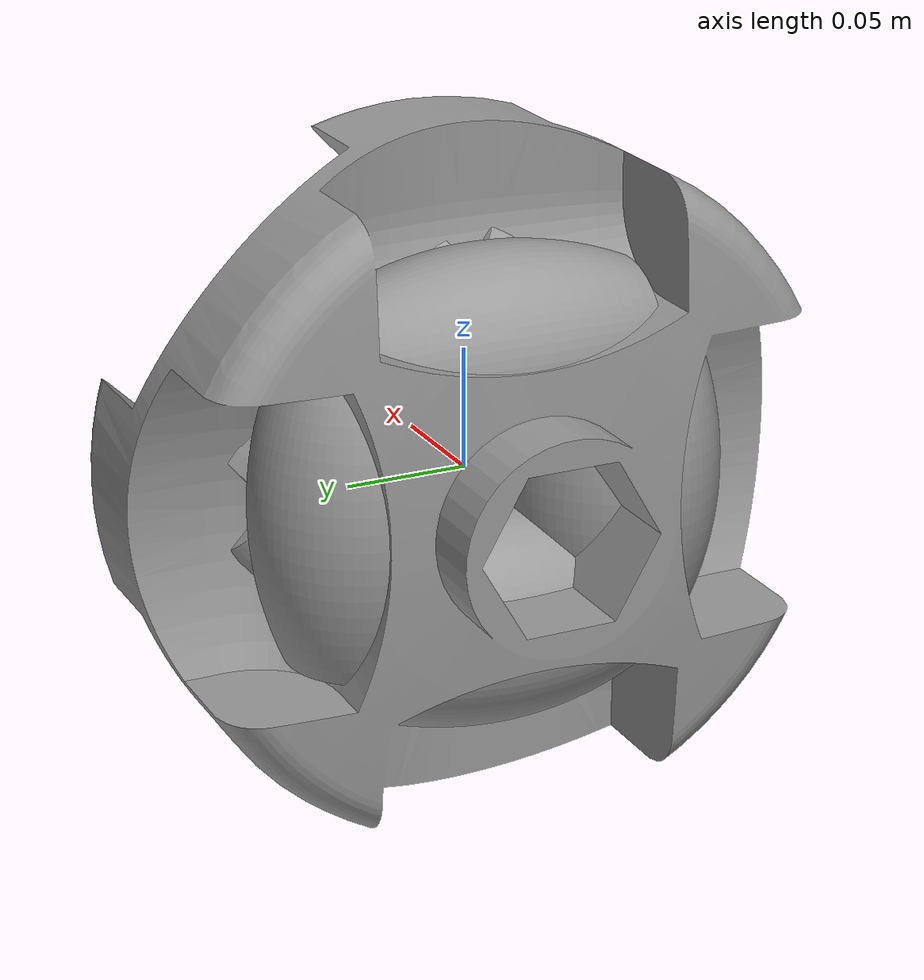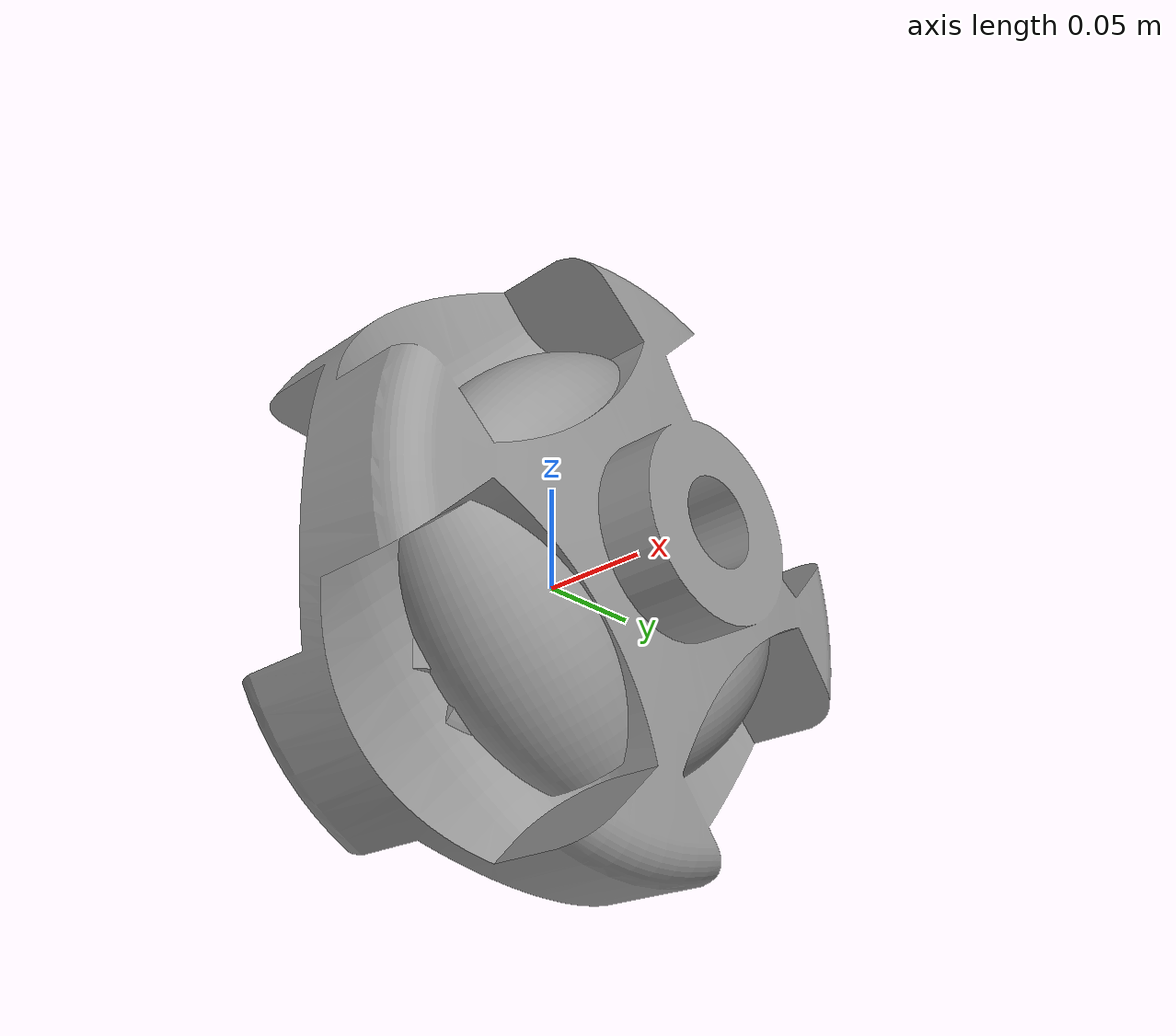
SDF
<?xml version='1.0'?>
<sdf version='1.6'>
  <model name='omni_wheel_model_scaled'>
    <link name='omni_wheel_rim_link'>
      <pose frame=''>0 0 0 0 -0 0</pose>
      <inertial>
        <mass>0.5349024</mass>
        <inertia>
          <ixx>9.40333e-07</ixx>
          <ixy>0</ixy>
          <ixz>0</ixz>
          <iyy>6.63684e-07</iyy>
          <iyz>0</iyz>
          <izz>6.63684e-07</izz>
        </inertia>
        <pose frame=''>0 -0.000343 0 0 -0 0</pose>
      </inertial>
      <self_collide>0</self_collide>
      <kinematic>0</kinematic>
      <gravity>1</gravity>
      <visual name='visual'>
        <pose frame=''>0 0 0 0 -0 0</pose>
        <geometry>
          <mesh>
            <uri>model://omni_wheel/rim.stl</uri>
            <scale>4 4 4</scale>
          </mesh>
        </geometry>
        <material>
          <lighting>1</lighting>
          <script>
            <uri>file://media/materials/scripts/gazebo.material</uri>
            <name>Gazebo/Grey</name>
          </script>
          <ambient>0.3 0.3 0.3 1</ambient>
          <diffuse>0.7 0.7 0.7 1</diffuse>
          <specular>0.01 0.01 0.01 1</specular>
          <emissive>0 0 0 1</emissive>
          <shader type='vertex'>
            <normal_map>__default__</normal_map>
          </shader>
        </material>
        <transparency>0</transparency>
        <cast_shadows>1</cast_shadows>
      </visual>
      <collision name='collision'>
        <laser_retro>0</laser_retro>
        <max_contacts>10</max_contacts>
        <pose frame=''>0 0 0 0 -0 0</pose>
        <geometry>
          <mesh>
            <uri>model://omni_wheel/rim.stl</uri>
            <scale>4 4 4</scale>
          </mesh>
        </geometry>
        <surface>
          <friction>
            <ode>
              <mu>1</mu>
              <mu2>1</mu2>
              <fdir1>0 0 0</fdir1>
              <slip1>0</slip1>
              <slip2>0</slip2>
            </ode>
            <torsional>
              <coefficient>1</coefficient>
              <patch_radius>0</patch_radius>
              <surface_radius>0</surface_radius>
              <use_patch_radius>1</use_patch_radius>
              <ode>
                <slip>0</slip>
              </ode>
            </torsional>
          </friction>
          <bounce>
            <restitution_coefficient>0</restitution_coefficient>
            <threshold>1e+06</threshold>
          </bounce>
          <contact>
            <collide_without_contact>0</collide_without_contact>
            <collide_without_contact_bitmask>1</collide_without_contact_bitmask>
            <collide_bitmask>1</collide_bitmask>
            <ode>
              <soft_cfm>0</soft_cfm>
              <soft_erp>0.2</soft_erp>
              <kp>1e+13</kp>
              <kd>1</kd>
              <max_vel>0.01</max_vel>
              <min_depth>0</min_depth>
            </ode>
            <bullet>
              <split_impulse>1</split_impulse>
              <split_impulse_penetration_threshold>-0.01</split_impulse_penetration_threshold>
              <soft_cfm>0</soft_cfm>
              <soft_erp>0.2</soft_erp>
              <kp>1e+13</kp>
              <kd>1</kd>
            </bullet>
          </contact>
        </surface>
      </collision>
    </link>
    <link name='omni_wheel_roller_e_link'>
      <pose frame=''>-0.022 0.0542 0 0 -0 0</pose>
      <inertial>
        <mass>0.00113845</mass>
        <inertia>
          <ixx>2.53776e-08</ixx>
          <ixy>0</ixy>
          <ixz>0</ixz>
          <iyy>2.53776e-08</iyy>
          <iyz>0</iyz>
          <izz>1.47666e-08</izz>
        </inertia>
        <pose frame=''>0 0 0 0 -0 0</pose>
      </inertial>
      <self_collide>0</self_collide>
      <kinematic>0</kinematic>
      <visual name='visual'>
        <pose frame=''>0 0 0 0 -0 0</pose>
        <geometry>
          <mesh>
            <uri>model://omni_wheel/roller.stl</uri>
            <scale>4 4 4</scale>
          </mesh>
        </geometry>
        <material>
          <lighting>1</lighting>
          <script>
            <uri>file://media/materials/scripts/gazebo.material</uri>
            <name>Gazebo/Grey</name>
          </script>
          <ambient>0.03 0.03 0.03 1</ambient>
          <diffuse>0.07 0.07 0.07 1</diffuse>
          <specular>0.001 0.001 0.001 1</specular>
          <emissive>0 0 0 1</emissive>
          <shader type='vertex'>
            <normal_map>__default__</normal_map>
          </shader>
        </material>
        <transparency>0</transparency>
        <cast_shadows>1</cast_shadows>
      </visual>
      <collision name='collision'>
        <laser_retro>0</laser_retro>
        <max_contacts>10</max_contacts>
        <pose frame=''>0 0 0 0 -0 0</pose>
        <geometry>
          <mesh>
            <uri>model://omni_wheel/roller.stl</uri>
            <scale>4 4 4</scale>
          </mesh>
        </geometry>
        <surface>
          <friction>
            <ode>
              <mu>1</mu>
              <mu2>1</mu2>
              <fdir1>0 0 0</fdir1>
              <slip1>0</slip1>
              <slip2>0</slip2>
            </ode>
            <torsional>
              <coefficient>1</coefficient>
              <patch_radius>0</patch_radius>
              <surface_radius>0</surface_radius>
              <use_patch_radius>1</use_patch_radius>
              <ode>
                <slip>0</slip>
              </ode>
            </torsional>
          </friction>
          <bounce>
            <restitution_coefficient>0</restitution_coefficient>
            <threshold>1e+06</threshold>
          </bounce>
          <contact>
            <collide_without_contact>0</collide_without_contact>
            <collide_without_contact_bitmask>1</collide_without_contact_bitmask>
            <collide_bitmask>1</collide_bitmask>
            <ode>
              <soft_cfm>0</soft_cfm>
              <soft_erp>0.2</soft_erp>
              <kp>1e+13</kp>
              <kd>1</kd>
              <max_vel>0.01</max_vel>
              <min_depth>0</min_depth>
            </ode>
            <bullet>
              <split_impulse>1</split_impulse>
              <split_impulse_penetration_threshold>-0.01</split_impulse_penetration_threshold>
              <soft_cfm>0</soft_cfm>
              <soft_erp>0.2</soft_erp>
              <kp>1e+13</kp>
              <kd>1</kd>
            </bullet>
          </contact>
        </surface>
      </collision>
    </link>
    <link name='omni_wheel_roller_ne_link'>
      <pose frame=''>0.022 0.038324 0.038324 0.875398 -0 0</pose>
      <inertial>
        <mass>0.00113845</mass>
        <inertia>
          <ixx>2.53776e-08</ixx>
          <ixy>0</ixy>
          <ixz>0</ixz>
          <iyy>2.53776e-08</iyy>
          <iyz>0</iyz>
          <izz>1.47666e-08</izz>
        </inertia>
        <pose frame=''>0 0 0 0 -0 0</pose>
      </inertial>
      <self_collide>0</self_collide>
      <kinematic>0</kinematic>
      <visual name='visual'>
        <pose frame=''>0 0 0 0 -0 0</pose>
        <geometry>
          <mesh>
            <uri>model://omni_wheel/roller.stl</uri>
            <scale>4 4 4</scale>
          </mesh>
        </geometry>
        <material>
          <lighting>1</lighting>
          <script>
            <uri>file://media/materials/scripts/gazebo.material</uri>
            <name>Gazebo/Grey</name>
          </script>
          <ambient>0.03 0.03 0.03 1</ambient>
          <diffuse>0.07 0.07 0.07 1</diffuse>
          <specular>0.001 0.001 0.001 1</specular>
          <emissive>0 0 0 1</emissive>
          <shader type='vertex'>
            <normal_map>__default__</normal_map>
          </shader>
        </material>
        <transparency>0</transparency>
        <cast_shadows>1</cast_shadows>
      </visual>
      <collision name='collision'>
        <laser_retro>0</laser_retro>
        <max_contacts>10</max_contacts>
        <pose frame=''>0 0 0 0 -0 0</pose>
        <geometry>
          <mesh>
            <uri>model://omni_wheel/roller.stl</uri>
            <scale>4 4 4</scale>
          </mesh>
        </geometry>
        <surface>
          <friction>
            <ode>
              <mu>1</mu>
              <mu2>1</mu2>
              <fdir1>0 0 0</fdir1>
              <slip1>0</slip1>
              <slip2>0</slip2>
            </ode>
            <torsional>
              <coefficient>1</coefficient>
              <patch_radius>0</patch_radius>
              <surface_radius>0</surface_radius>
              <use_patch_radius>1</use_patch_radius>
              <ode>
                <slip>0</slip>
              </ode>
            </torsional>
          </friction>
          <bounce>
            <restitution_coefficient>0</restitution_coefficient>
            <threshold>1e+06</threshold>
          </bounce>
          <contact>
            <collide_without_contact>0</collide_without_contact>
            <collide_without_contact_bitmask>1</collide_without_contact_bitmask>
            <collide_bitmask>1</collide_bitmask>
            <ode>
              <soft_cfm>0</soft_cfm>
              <soft_erp>0.2</soft_erp>
              <kp>1e+13</kp>
              <kd>1</kd>
              <max_vel>0.01</max_vel>
              <min_depth>0</min_depth>
            </ode>
            <bullet>
              <split_impulse>1</split_impulse>
              <split_impulse_penetration_threshold>-0.01</split_impulse_penetration_threshold>
              <soft_cfm>0</soft_cfm>
              <soft_erp>0.2</soft_erp>
              <kp>1e+13</kp>
              <kd>1</kd>
            </bullet>
          </contact>
        </surface>
      </collision>
    </link>
    <link name='omni_wheel_roller_n_link'>
      <pose frame=''>-0.022 0 0.0542 1.5708 -0 0</pose>
      <inertial>
        <mass>0.00113845</mass>
        <inertia>
          <ixx>2.53776e-08</ixx>
          <ixy>0</ixy>
          <ixz>0</ixz>
          <iyy>2.53776e-08</iyy>
          <iyz>0</iyz>
          <izz>1.47666e-08</izz>
        </inertia>
        <pose frame=''>0 0 0 0 -0 0</pose>
      </inertial>
      <self_collide>0</self_collide>
      <kinematic>0</kinematic>
      <gravity>1</gravity>
      <visual name='visual'>
        <pose frame=''>0 0 0 0 -0 0</pose>
        <geometry>
          <mesh>
            <uri>model://omni_wheel/roller.stl</uri>
            <scale>4 4 4</scale>
          </mesh>
        </geometry>
        <material>
          <lighting>1</lighting>
          <script>
            <uri>file://media/materials/scripts/gazebo.material</uri>
            <name>Gazebo/Grey</name>
          </script>
          <ambient>0.03 0.03 0.03 1</ambient>
          <diffuse>0.07 0.07 0.07 1</diffuse>
          <specular>0.001 0.001 0.001 1</specular>
          <emissive>0 0 0 1</emissive>
          <shader type='vertex'>
            <normal_map>__default__</normal_map>
          </shader>
        </material>
        <transparency>0</transparency>
        <cast_shadows>1</cast_shadows>
      </visual>
      <collision name='collision'>
        <laser_retro>0</laser_retro>
        <max_contacts>10</max_contacts>
        <pose frame=''>0 0 0 0 -0 0</pose>
        <geometry>
          <mesh>
            <uri>model://omni_wheel/roller.stl</uri>
            <scale>4 4 4</scale>
          </mesh>
        </geometry>
        <surface>
          <friction>
            <ode>
              <mu>1</mu>
              <mu2>1</mu2>
              <fdir1>0 0 0</fdir1>
              <slip1>0</slip1>
              <slip2>0</slip2>
            </ode>
            <torsional>
              <coefficient>1</coefficient>
              <patch_radius>0</patch_radius>
              <surface_radius>0</surface_radius>
              <use_patch_radius>1</use_patch_radius>
              <ode>
                <slip>0</slip>
              </ode>
            </torsional>
          </friction>
          <bounce>
            <restitution_coefficient>0</restitution_coefficient>
            <threshold>1e+06</threshold>
          </bounce>
          <contact>
            <collide_without_contact>0</collide_without_contact>
            <collide_without_contact_bitmask>1</collide_without_contact_bitmask>
            <collide_bitmask>1</collide_bitmask>
            <ode>
              <soft_cfm>0</soft_cfm>
              <soft_erp>0.2</soft_erp>
              <kp>1e+13</kp>
              <kd>1</kd>
              <max_vel>0.01</max_vel>
              <min_depth>0</min_depth>
            </ode>
            <bullet>
              <split_impulse>1</split_impulse>
              <split_impulse_penetration_threshold>-0.01</split_impulse_penetration_threshold>
              <soft_cfm>0</soft_cfm>
              <soft_erp>0.2</soft_erp>
              <kp>1e+13</kp>
              <kd>1</kd>
            </bullet>
          </contact>
        </surface>
      </collision>
    </link>
    <link name='omni_wheel_roller_nw_link'>
      <pose frame=''>0.022 -0.038324 0.038324 2.35619 -0 0</pose>
      <inertial>
        <mass>0.00113845</mass>
        <inertia>
          <ixx>2.53776e-08</ixx>
          <ixy>0</ixy>
          <ixz>0</ixz>
          <iyy>2.53776e-08</iyy>
          <iyz>0</iyz>
          <izz>1.47666e-08</izz>
        </inertia>
        <pose frame=''>0 0 0 0 -0 0</pose>
      </inertial>
      <self_collide>0</self_collide>
      <kinematic>0</kinematic>
      <gravity>1</gravity>
      <visual name='visual'>
        <pose frame=''>0 0 0 0 -0 0</pose>
        <geometry>
          <mesh>
            <uri>model://omni_wheel/roller.stl</uri>
            <scale>4 4 4</scale>
          </mesh>
        </geometry>
        <material>
          <lighting>1</lighting>
          <script>
            <uri>file://media/materials/scripts/gazebo.material</uri>
            <name>Gazebo/Grey</name>
          </script>
          <ambient>0.03 0.03 0.03 1</ambient>
          <diffuse>0.07 0.07 0.07 1</diffuse>
          <specular>0.001 0.001 0.001 1</specular>
          <emissive>0 0 0 1</emissive>
          <shader type='vertex'>
            <normal_map>__default__</normal_map>
          </shader>
        </material>
        <transparency>0</transparency>
        <cast_shadows>1</cast_shadows>
      </visual>
      <collision name='collision'>
        <laser_retro>0</laser_retro>
        <max_contacts>10</max_contacts>
        <pose frame=''>0 0 0 0 -0 0</pose>
        <geometry>
          <mesh>
            <uri>model://omni_wheel/roller.stl</uri>
            <scale>4 4 4</scale>
          </mesh>
        </geometry>
        <surface>
          <friction>
            <ode>
              <mu>1</mu>
              <mu2>1</mu2>
              <fdir1>0 0 0</fdir1>
              <slip1>0</slip1>
              <slip2>0</slip2>
            </ode>
            <torsional>
              <coefficient>1</coefficient>
              <patch_radius>0</patch_radius>
              <surface_radius>0</surface_radius>
              <use_patch_radius>1</use_patch_radius>
              <ode>
                <slip>0</slip>
              </ode>
            </torsional>
          </friction>
          <bounce>
            <restitution_coefficient>0</restitution_coefficient>
            <threshold>1e+06</threshold>
          </bounce>
          <contact>
            <collide_without_contact>0</collide_without_contact>
            <collide_without_contact_bitmask>1</collide_without_contact_bitmask>
            <collide_bitmask>1</collide_bitmask>
            <ode>
              <soft_cfm>0</soft_cfm>
              <soft_erp>0.2</soft_erp>
              <kp>1e+13</kp>
              <kd>1</kd>
              <max_vel>0.01</max_vel>
              <min_depth>0</min_depth>
            </ode>
            <bullet>
              <split_impulse>1</split_impulse>
              <split_impulse_penetration_threshold>-0.01</split_impulse_penetration_threshold>
              <soft_cfm>0</soft_cfm>
              <soft_erp>0.2</soft_erp>
              <kp>1e+13</kp>
              <kd>1</kd>
            </bullet>
          </contact>
        </surface>
      </collision>
    </link>
    <link name='omni_wheel_roller_w_link'>
      <pose frame=''>-0.022 -0.0542 0 -3.14159 0 0</pose>
      <inertial>
        <mass>0.00113845</mass>
        <inertia>
          <ixx>2.53776e-08</ixx>
          <ixy>0</ixy>
          <ixz>0</ixz>
          <iyy>2.53776e-08</iyy>
          <iyz>0</iyz>
          <izz>1.47666e-08</izz>
        </inertia>
        <pose frame=''>0 0 0 0 -0 0</pose>
      </inertial>
      <self_collide>0</self_collide>
      <kinematic>0</kinematic>
      <gravity>1</gravity>
      <visual name='visual'>
        <pose frame=''>0 0 0 0 -0 0</pose>
        <geometry>
          <mesh>
            <uri>model://omni_wheel/roller.stl</uri>
            <scale>4 4 4</scale>
          </mesh>
        </geometry>
        <material>
          <lighting>1</lighting>
          <script>
            <uri>file://media/materials/scripts/gazebo.material</uri>
            <name>Gazebo/Grey</name>
          </script>
          <ambient>0.03 0.03 0.03 1</ambient>
          <diffuse>0.07 0.07 0.07 1</diffuse>
          <specular>0.001 0.001 0.001 1</specular>
          <emissive>0 0 0 1</emissive>
          <shader type='vertex'>
            <normal_map>__default__</normal_map>
          </shader>
        </material>
        <transparency>0</transparency>
        <cast_shadows>1</cast_shadows>
      </visual>
      <collision name='collision'>
        <laser_retro>0</laser_retro>
        <max_contacts>10</max_contacts>
        <pose frame=''>0 0 0 0 -0 0</pose>
        <geometry>
          <mesh>
            <uri>model://omni_wheel/roller.stl</uri>
            <scale>4 4 4</scale>
          </mesh>
        </geometry>
        <surface>
          <friction>
            <ode>
              <mu>1</mu>
              <mu2>1</mu2>
              <fdir1>0 0 0</fdir1>
              <slip1>0</slip1>
              <slip2>0</slip2>
            </ode>
            <torsional>
              <coefficient>1</coefficient>
              <patch_radius>0</patch_radius>
              <surface_radius>0</surface_radius>
              <use_patch_radius>1</use_patch_radius>
              <ode>
                <slip>0</slip>
              </ode>
            </torsional>
          </friction>
          <bounce>
            <restitution_coefficient>0</restitution_coefficient>
            <threshold>1e+06</threshold>
          </bounce>
          <contact>
            <collide_without_contact>0</collide_without_contact>
            <collide_without_contact_bitmask>1</collide_without_contact_bitmask>
            <collide_bitmask>1</collide_bitmask>
            <ode>
              <soft_cfm>0</soft_cfm>
              <soft_erp>0.2</soft_erp>
              <kp>1e+13</kp>
              <kd>1</kd>
              <max_vel>0.01</max_vel>
              <min_depth>0</min_depth>
            </ode>
            <bullet>
              <split_impulse>1</split_impulse>
              <split_impulse_penetration_threshold>-0.01</split_impulse_penetration_threshold>
              <soft_cfm>0</soft_cfm>
              <soft_erp>0.2</soft_erp>
              <kp>1e+13</kp>
              <kd>1</kd>
            </bullet>
          </contact>
        </surface>
      </collision>
    </link>
    <link name='omni_wheel_roller_sw_link'>
      <pose frame=''>0.022 -0.038324 -0.038324 -2.35619 0 0</pose>
      <inertial>
        <mass>0.00113845</mass>
        <inertia>
          <ixx>2.53776e-08</ixx>
          <ixy>0</ixy>
          <ixz>0</ixz>
          <iyy>2.53776e-08</iyy>
          <iyz>0</iyz>
          <izz>1.47666e-08</izz>
        </inertia>
        <pose frame=''>0 0 0 0 -0 0</pose>
      </inertial>
      <self_collide>0</self_collide>
      <kinematic>0</kinematic>
      <gravity>1</gravity>
      <visual name='visual'>
        <pose frame=''>0 0 0 0 -0 0</pose>
        <geometry>
          <mesh>
            <uri>model://omni_wheel/roller.stl</uri>
            <scale>4 4 4</scale>
          </mesh>
        </geometry>
        <material>
          <lighting>1</lighting>
          <script>
            <uri>file://media/materials/scripts/gazebo.material</uri>
            <name>Gazebo/Grey</name>
          </script>
          <ambient>0.03 0.03 0.03 1</ambient>
          <diffuse>0.07 0.07 0.07 1</diffuse>
          <specular>0.001 0.001 0.001 1</specular>
          <emissive>0 0 0 1</emissive>
          <shader type='vertex'>
            <normal_map>__default__</normal_map>
          </shader>
        </material>
        <transparency>0</transparency>
        <cast_shadows>1</cast_shadows>
      </visual>
      <collision name='collision'>
        <laser_retro>0</laser_retro>
        <max_contacts>10</max_contacts>
        <pose frame=''>0 0 0 0 -0 0</pose>
        <geometry>
          <mesh>
            <uri>model://omni_wheel/roller.stl</uri>
            <scale>4 4 4</scale>
          </mesh>
        </geometry>
        <surface>
          <friction>
            <ode>
              <mu>1</mu>
              <mu2>1</mu2>
              <fdir1>0 0 0</fdir1>
              <slip1>0</slip1>
              <slip2>0</slip2>
            </ode>
            <torsional>
              <coefficient>1</coefficient>
              <patch_radius>0</patch_radius>
              <surface_radius>0</surface_radius>
              <use_patch_radius>1</use_patch_radius>
              <ode>
                <slip>0</slip>
              </ode>
            </torsional>
          </friction>
          <bounce>
            <restitution_coefficient>0</restitution_coefficient>
            <threshold>1e+06</threshold>
          </bounce>
          <contact>
            <collide_without_contact>0</collide_without_contact>
            <collide_without_contact_bitmask>1</collide_without_contact_bitmask>
            <collide_bitmask>1</collide_bitmask>
            <ode>
              <soft_cfm>0</soft_cfm>
              <soft_erp>0.2</soft_erp>
              <kp>1e+13</kp>
              <kd>1</kd>
              <max_vel>0.01</max_vel>
              <min_depth>0</min_depth>
            </ode>
            <bullet>
              <split_impulse>1</split_impulse>
              <split_impulse_penetration_threshold>-0.01</split_impulse_penetration_threshold>
              <soft_cfm>0</soft_cfm>
              <soft_erp>0.2</soft_erp>
              <kp>1e+13</kp>
              <kd>1</kd>
            </bullet>
          </contact>
        </surface>
      </collision>
    </link>
    <link name='omni_wheel_roller_s_link'>
      <pose frame=''>-0.022 0 -0.0542 -1.5708 0 0</pose>
      <inertial>
        <mass>0.00113845</mass>
        <inertia>
          <ixx>2.53776e-08</ixx>
          <ixy>0</ixy>
          <ixz>0</ixz>
          <iyy>2.53776e-08</iyy>
          <iyz>0</iyz>
          <izz>1.47666e-08</izz>
        </inertia>
        <pose frame=''>0 0 0 0 -0 0</pose>
      </inertial>
      <self_collide>0</self_collide>
      <kinematic>0</kinematic>
      <gravity>1</gravity>
      <visual name='visual'>
        <pose frame=''>0 0 0 0 -0 0</pose>
        <geometry>
          <mesh>
            <uri>model://omni_wheel/roller.stl</uri>
            <scale>4 4 4</scale>
          </mesh>
        </geometry>
        <material>
          <lighting>1</lighting>
          <script>
            <uri>file://media/materials/scripts/gazebo.material</uri>
            <name>Gazebo/Grey</name>
          </script>
          <ambient>0.03 0.03 0.03 1</ambient>
          <diffuse>0.07 0.07 0.07 1</diffuse>
          <specular>0.001 0.001 0.001 1</specular>
          <emissive>0 0 0 1</emissive>
          <shader type='vertex'>
            <normal_map>__default__</normal_map>
          </shader>
        </material>
        <transparency>0</transparency>
        <cast_shadows>1</cast_shadows>
      </visual>
      <collision name='collision'>
        <laser_retro>0</laser_retro>
        <max_contacts>10</max_contacts>
        <pose frame=''>0 0 0 0 -0 0</pose>
        <geometry>
          <mesh>
            <uri>model://omni_wheel/roller.stl</uri>
            <scale>4 4 4</scale>
          </mesh>
        </geometry>
        <surface>
          <friction>
            <ode>
              <mu>1</mu>
              <mu2>1</mu2>
              <fdir1>0 0 0</fdir1>
              <slip1>0</slip1>
              <slip2>0</slip2>
            </ode>
            <torsional>
              <coefficient>1</coefficient>
              <patch_radius>0</patch_radius>
              <surface_radius>0</surface_radius>
              <use_patch_radius>1</use_patch_radius>
              <ode>
                <slip>0</slip>
              </ode>
            </torsional>
          </friction>
          <bounce>
            <restitution_coefficient>0</restitution_coefficient>
            <threshold>1e+06</threshold>
          </bounce>
          <contact>
            <collide_without_contact>0</collide_without_contact>
            <collide_without_contact_bitmask>1</collide_without_contact_bitmask>
            <collide_bitmask>1</collide_bitmask>
            <ode>
              <soft_cfm>0</soft_cfm>
              <soft_erp>0.2</soft_erp>
              <kp>1e+13</kp>
              <kd>1</kd>
              <max_vel>0.01</max_vel>
              <min_depth>0</min_depth>
            </ode>
            <bullet>
              <split_impulse>1</split_impulse>
              <split_impulse_penetration_threshold>-0.01</split_impulse_penetration_threshold>
              <soft_cfm>0</soft_cfm>
              <soft_erp>0.2</soft_erp>
              <kp>1e+13</kp>
              <kd>1</kd>
            </bullet>
          </contact>
        </surface>
      </collision>
    </link>
    <link name='omni_wheel_roller_se_link'>
      <pose frame=''>0.022 0.038324 -0.038324 -0.875398 0 0</pose>
      <inertial>
        <mass>0.00113845</mass>
        <inertia>
          <ixx>2.53776e-08</ixx>
          <ixy>0</ixy>
          <ixz>0</ixz>
          <iyy>2.53776e-08</iyy>
          <iyz>0</iyz>
          <izz>1.47666e-08</izz>
        </inertia>
        <pose frame=''>0 0 0 0 -0 0</pose>
      </inertial>
      <self_collide>0</self_collide>
      <kinematic>0</kinematic>
      <gravity>1</gravity>
      <visual name='visual'>
        <pose frame=''>0 0 0 0 -0 0</pose>
        <geometry>
          <mesh>
            <uri>model://omni_wheel/roller.stl</uri>
            <scale>4 4 4</scale>
          </mesh>
        </geometry>
        <material>
          <lighting>1</lighting>
          <script>
            <uri>file://media/materials/scripts/gazebo.material</uri>
            <name>Gazebo/Grey</name>
          </script>
          <ambient>0.03 0.03 0.03 1</ambient>
          <diffuse>0.07 0.07 0.07 1</diffuse>
          <specular>0.001 0.001 0.001 1</specular>
          <emissive>0 0 0 1</emissive>
          <shader type='vertex'>
            <normal_map>__default__</normal_map>
          </shader>
        </material>
        <transparency>0</transparency>
        <cast_shadows>1</cast_shadows>
      </visual>
      <collision name='collision'>
        <laser_retro>0</laser_retro>
        <max_contacts>10</max_contacts>
        <pose frame=''>0 0 0 0 -0 0</pose>
        <geometry>
          <mesh>
            <uri>model://omni_wheel/roller.stl</uri>
            <scale>4 4 4</scale>
          </mesh>
        </geometry>
        <surface>
          <friction>
            <ode>
              <mu>1</mu>
              <mu2>1</mu2>
              <fdir1>0 0 0</fdir1>
              <slip1>0</slip1>
              <slip2>0</slip2>
            </ode>
            <torsional>
              <coefficient>1</coefficient>
              <patch_radius>0</patch_radius>
              <surface_radius>0</surface_radius>
              <use_patch_radius>1</use_patch_radius>
              <ode>
                <slip>0</slip>
              </ode>
            </torsional>
          </friction>
          <bounce>
            <restitution_coefficient>0</restitution_coefficient>
            <threshold>1e+06</threshold>
          </bounce>
          <contact>
            <collide_without_contact>0</collide_without_contact>
            <collide_without_contact_bitmask>1</collide_without_contact_bitmask>
            <collide_bitmask>1</collide_bitmask>
            <ode>
              <soft_cfm>0</soft_cfm>
              <soft_erp>0.2</soft_erp>
              <kp>1e+13</kp>
              <kd>1</kd>
              <max_vel>0.01</max_vel>
              <min_depth>0</min_depth>
            </ode>
            <bullet>
              <split_impulse>1</split_impulse>
              <split_impulse_penetration_threshold>-0.01</split_impulse_penetration_threshold>
              <soft_cfm>0</soft_cfm>
              <soft_erp>0.2</soft_erp>
              <kp>1e+13</kp>
              <kd>1</kd>
            </bullet>
          </contact>
        </surface>
      </collision>
    </link>
    <joint name='omni_wheel_s_joint' type='revolute'>
      <parent>omni_wheel_rim_link</parent>
      <child>omni_wheel_roller_s_link</child>
      <pose frame=''>0 0 0 0 -0 1.5708</pose>
      <axis>
        <xyz>0 0 1</xyz>
        <use_parent_model_frame>0</use_parent_model_frame>
        <limit>
          <lower>-1.79769e+308</lower>
          <upper>1.79769e+308</upper>
          <effort>-1</effort>
          <velocity>-1</velocity>
        </limit>
        <dynamics>
          <spring_reference>0</spring_reference>
          <spring_stiffness>0</spring_stiffness>
          <damping>0</damping>
          <friction>0</friction>
        </dynamics>
      </axis>
      <physics>
        <ode>
          <limit>
            <cfm>0</cfm>
            <erp>0.2</erp>
          </limit>
          <suspension>
            <cfm>0</cfm>
            <erp>0.2</erp>
          </suspension>
        </ode>
      </physics>
    </joint>
    <joint name='omni_wheel_se_joint' type='revolute'>
      <parent>omni_wheel_rim_link</parent>
      <child>omni_wheel_roller_se_link</child>
      <pose frame=''>0 0 0 0 -0 1.5708</pose>
      <axis>
        <xyz>0 0 1</xyz>
        <use_parent_model_frame>0</use_parent_model_frame>
        <limit>
          <lower>-1.79769e+308</lower>
          <upper>1.79769e+308</upper>
          <effort>-1</effort>
          <velocity>-1</velocity>
        </limit>
        <dynamics>
          <spring_reference>0</spring_reference>
          <spring_stiffness>0</spring_stiffness>
          <damping>0</damping>
          <friction>0</friction>
        </dynamics>
      </axis>
      <physics>
        <ode>
          <limit>
            <cfm>0</cfm>
            <erp>0.2</erp>
          </limit>
          <suspension>
            <cfm>0</cfm>
            <erp>0.2</erp>
          </suspension>
        </ode>
      </physics>
    </joint>
    <joint name='omni_wheel_e_joint' type='revolute'>
      <parent>omni_wheel_rim_link</parent>
      <child>omni_wheel_roller_e_link</child>
      <pose frame=''>0 0 0 0 -0 1.5708</pose>
      <axis>
        <xyz>0 0 1</xyz>
        <use_parent_model_frame>0</use_parent_model_frame>
        <limit>
          <lower>-1.79769e+308</lower>
          <upper>1.79769e+308</upper>
          <effort>-1</effort>
          <velocity>-1</velocity>
        </limit>
        <dynamics>
          <spring_reference>0</spring_reference>
          <spring_stiffness>0</spring_stiffness>
          <damping>0</damping>
          <friction>0</friction>
        </dynamics>
      </axis>
      <physics>
        <ode>
          <limit>
            <cfm>0</cfm>
            <erp>0.2</erp>
          </limit>
          <suspension>
            <cfm>0</cfm>
            <erp>0.2</erp>
          </suspension>
        </ode>
      </physics>
    </joint>
    <joint name='omni_wheel_ne_joint' type='revolute'>
      <parent>omni_wheel_rim_link</parent>
      <child>omni_wheel_roller_ne_link</child>
      <pose frame=''>0 0 0 0 -0 1.5708</pose>
      <axis>
        <xyz>0 0 1</xyz>
        <use_parent_model_frame>0</use_parent_model_frame>
        <limit>
          <lower>-1.79769e+308</lower>
          <upper>1.79769e+308</upper>
          <effort>-1</effort>
          <velocity>-1</velocity>
        </limit>
        <dynamics>
          <spring_reference>0</spring_reference>
          <spring_stiffness>0</spring_stiffness>
          <damping>0</damping>
          <friction>0</friction>
        </dynamics>
      </axis>
      <physics>
        <ode>
          <limit>
            <cfm>0</cfm>
            <erp>0.2</erp>
          </limit>
          <suspension>
            <cfm>0</cfm>
            <erp>0.2</erp>
          </suspension>
        </ode>
      </physics>
    </joint>
    <joint name='omni_wheel_n_joint' type='revolute'>
      <parent>omni_wheel_rim_link</parent>
      <child>omni_wheel_roller_n_link</child>
      <pose frame=''>0 0 0 0 -0 1.5708</pose>
      <axis>
        <xyz>0 0 1</xyz>
        <use_parent_model_frame>0</use_parent_model_frame>
        <limit>
          <lower>-1.79769e+308</lower>
          <upper>1.79769e+308</upper>
          <effort>-1</effort>
          <velocity>-1</velocity>
        </limit>
        <dynamics>
          <spring_reference>0</spring_reference>
          <spring_stiffness>0</spring_stiffness>
          <damping>0</damping>
          <friction>0</friction>
        </dynamics>
      </axis>
      <physics>
        <ode>
          <limit>
            <cfm>0</cfm>
            <erp>0.2</erp>
          </limit>
          <suspension>
            <cfm>0</cfm>
            <erp>0.2</erp>
          </suspension>
        </ode>
      </physics>
    </joint>
    <joint name='omni_wheel_nw_joint' type='revolute'>
      <parent>omni_wheel_rim_link</parent>
      <child>omni_wheel_roller_nw_link</child>
      <pose frame=''>0 0 0 0 -0 1.5708</pose>
      <axis>
        <xyz>0 0 1</xyz>
        <use_parent_model_frame>0</use_parent_model_frame>
        <limit>
          <lower>-1.79769e+308</lower>
          <upper>1.79769e+308</upper>
          <effort>-1</effort>
          <velocity>-1</velocity>
        </limit>
        <dynamics>
          <spring_reference>0</spring_reference>
          <spring_stiffness>0</spring_stiffness>
          <damping>0</damping>
          <friction>0</friction>
        </dynamics>
      </axis>
      <physics>
        <ode>
          <limit>
            <cfm>0</cfm>
            <erp>0.2</erp>
          </limit>
          <suspension>
            <cfm>0</cfm>
            <erp>0.2</erp>
          </suspension>
        </ode>
      </physics>
    </joint>
    <joint name='omni_wheel_w_joint' type='revolute'>
      <parent>omni_wheel_rim_link</parent>
      <child>omni_wheel_roller_w_link</child>
      <pose frame=''>0 0 0 0 -0 1.5708</pose>
      <axis>
        <xyz>0 0 1</xyz>
        <use_parent_model_frame>0</use_parent_model_frame>
        <limit>
          <lower>-1.79769e+308</lower>
          <upper>1.79769e+308</upper>
          <effort>-1</effort>
          <velocity>-1</velocity>
        </limit>
        <dynamics>
          <spring_reference>0</spring_reference>
          <spring_stiffness>0</spring_stiffness>
          <damping>0</damping>
          <friction>0</friction>
        </dynamics>
      </axis>
      <physics>
        <ode>
          <limit>
            <cfm>0</cfm>
            <erp>0.2</erp>
          </limit>
          <suspension>
            <cfm>0</cfm>
            <erp>0.2</erp>
          </suspension>
        </ode>
      </physics>
    </joint>
    <joint name='omni_wheel_sw_joint' type='revolute'>
      <parent>omni_wheel_rim_link</parent>
      <child>omni_wheel_roller_sw_link</child>
      <pose frame=''>0 0 0 0 -0 1.5708</pose>
      <axis>
        <xyz>0 0 1</xyz>
        <use_parent_model_frame>0</use_parent_model_frame>
        <limit>
          <lower>-1.79769e+308</lower>
          <upper>1.79769e+308</upper>
          <effort>-1</effort>
          <velocity>-1</velocity>
        </limit>
        <dynamics>
          <spring_reference>0</spring_reference>
          <spring_stiffness>0</spring_stiffness>
          <damping>0</damping>
          <friction>0</friction>
        </dynamics>
      </axis>
      <physics>
        <ode>
          <limit>
            <cfm>0</cfm>
            <erp>0.2</erp>
          </limit>
          <suspension>
            <cfm>0</cfm>
            <erp>0.2</erp>
          </suspension>
        </ode>
      </physics>
    </joint>
    <static>0</static>
    <allow_auto_disable>1</allow_auto_disable>
  </model>
</sdf>
